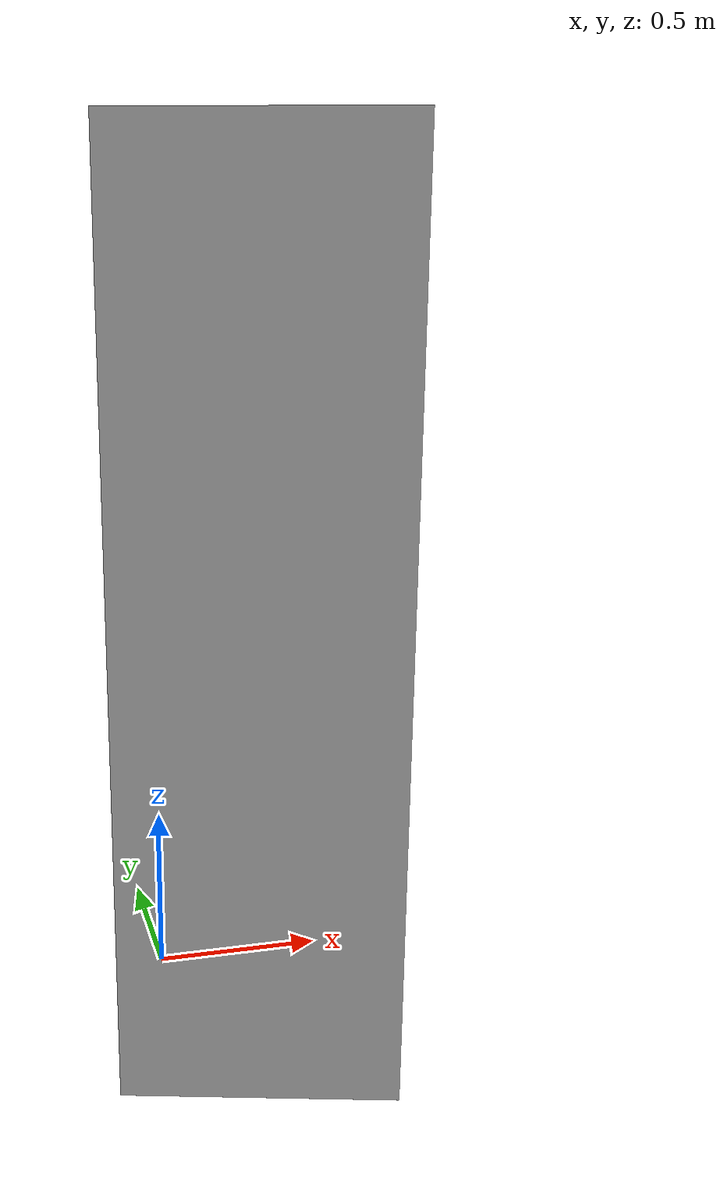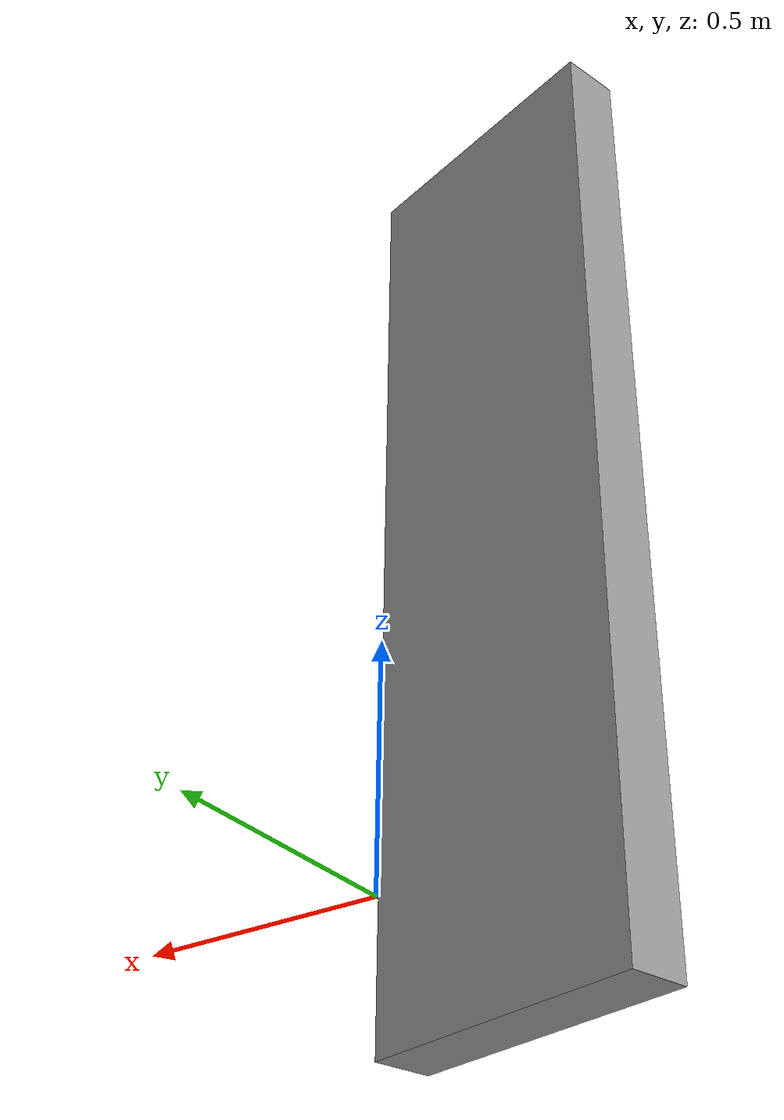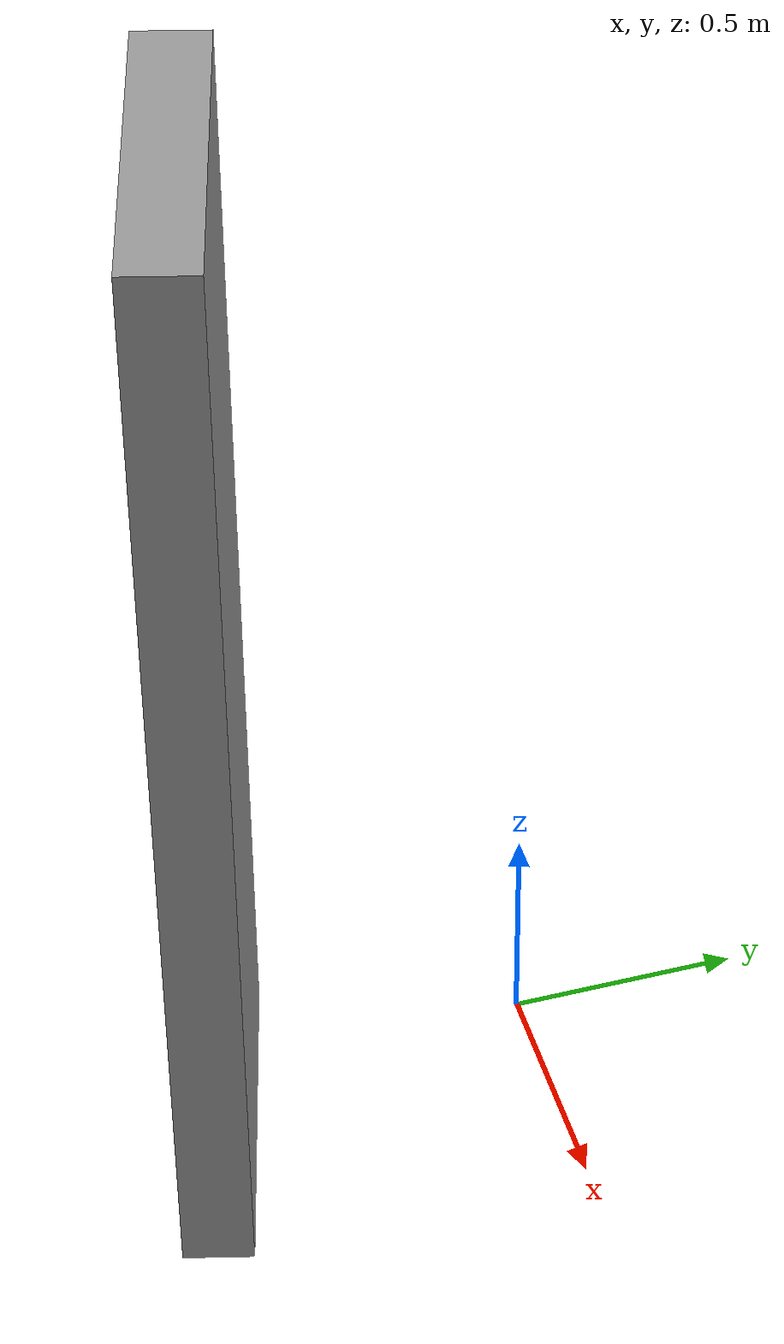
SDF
<?xml version='1.0'?>
<sdf version='1.6'>
  <model name='Building1NoDOor'>
    <pose frame=''>0.150222 -0.712354 0 0 -0 0</pose>
    <link name='Wall_2'>
      <collision name='Wall_2_Collision'>
        <geometry>
          <box>
            <size>0.75 0.15 2.5</size>
          </box>
        </geometry>
        <pose frame=''>0 0 1.25 0 -0 0</pose>
      </collision>
      <visual name='Wall_2_Visual'>
        <pose frame=''>0 0 1.25 0 -0 0</pose>
        <geometry>
          <box>
            <size>0.75 0.15 2.5</size>
          </box>
        </geometry>
        <material>
          <script>
            <uri>file://media/materials/scripts/gazebo.material</uri>
            <name>Gazebo/Grey</name>
          </script>
          <ambient>1 1 1 1</ambient>
        </material>
        <meta>
          <layer>0</layer>
        </meta>
      </visual>
      <pose frame=''>0 0 0 0 -0 2.87979</pose>
    </link>
    <static>1</static>
  </model>
</sdf>
